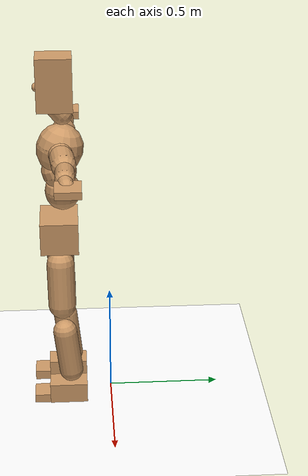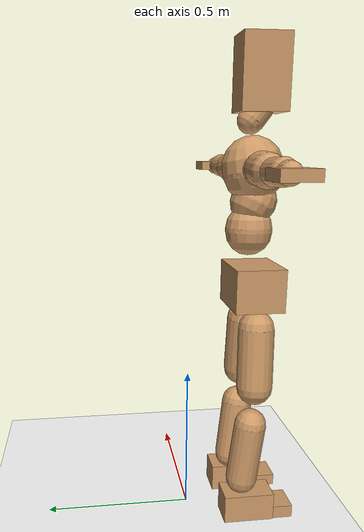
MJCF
<mujoco model="humanoid">
  <option integrator="implicitfast" />

  <visual>
    <global offwidth="1280" offheight="960" />
    <headlight active="1" ambient="0.34 0.34 0.34" diffuse="0.5 0.5 0.5" />
  </visual>

  <default>
    <joint damping="2" stiffness="2" armature="0.01" limited="true" solimplimit="0 .99 .01" />
    <geom condim="1" friction="0.7 0.005 0.0001" solimp=".99 .99 .003" solref="0.015 1" margin="0.001" rgba="0.8 0.6 .4 1" />
    <default class="smplcontact">
      <geom condim="3" friction="1. 0.005 0.0001" solref="0.015 1" solimp="0.98 0.98 0.001" priority="1" />
    </default>
    <default class="stiff_medium">
      <joint stiffness="10" />
    </default>
    <default class="stiff_medium_higher">
      <joint stiffness="50" />
    </default>
    <default class="stiff_high">
      <joint stiffness="100" />
    </default>
  </default>

  <asset>
    <texture type="skybox" builtin="gradient" rgb1="0.99 0.99 0.99" rgb2="0.608 0.828 0.892" width="100" />
    <texture builtin="flat" height="1278" mark="cross" markrgb="1 1 1" name="texgeom" random="0.01" rgb1="0.8 0.6 0.4" rgb2="0.8 0.6 0.4" type="cube" width="127" />
    <texture name="texplane" type="2d" builtin="checker" markrgb="1 1 1" rgb1="0.756 0.772 0.76" rgb2="0.6 0.6 0.6" width="100" height="100" />
    <material name="MatPlane" reflectance="0.5" texture="texplane" texrepeat="1 1" texuniform="true" />
    <material name="geom" texture="texgeom" texuniform="true" />
  </asset>

  <worldbody>
    <light name="tracking_light" pos="0 0 7" dir="0 0 -1" directional="true" cutoff="100" exponent="1" diffuse="1 1 1" specular="0.1 0.1 0.1" mode="trackcom" />
    <camera name="back" pos="0 3 2.4" xyaxes="-1 0 0 0 -1 2" mode="trackcom" />
    <camera name="side" pos="-3 0 2.4" xyaxes="0 -1 0 1 0 2" mode="trackcom" />
    <camera name="front_side" pos="-2.8 -2.8 0.8" xyaxes="0.5 -0.5 0 0.1 0.1 1" mode="trackcom" />
    <geom condim="3" name="floor" pos="0 0 0" rgba="1 1 1 1" size="100 100 .2" type="plane" material="MatPlane" />
    <body name="Pelvis" pos="-0.0018 -0.2233 0.825587" euler="90 0 0">
      <site name="Pelvis" size="0.01" />
      <freejoint name="Pelvis" />
      <geom type="box" pos="-0.0000 -0.0121 -0.0055" size="0.1069 0.0722 0.083" quat="1.0000 0.0000 0.0000 0.0000" density="3165.830099" name="Pelvis" />
      <body name="L_Hip" pos="0.0608125 -0.079975 -0.00595">
        <joint name="L_Hip_x" type="hinge" pos="0 0 0" axis="1 0 0" stiffness="8.018564387755102" range="-160.0 22.92" class="stiff_medium" damping="11.360360262787497" armature="0.007153277434128083"/>
        <joint name="L_Hip_y" type="hinge" pos="0 0 0" axis="0 1 0" stiffness="8.040343265306122" range="-70.0 70.0" class="stiff_medium" damping="8.207855033549667" armature="0.008378856726485997"/>
        <joint name="L_Hip_z" type="hinge" pos="0 0 0" axis="0 0 1" stiffness="8.038478673469386" range="-28.65 90.0" class="stiff_medium" damping="7.581991637464593" armature="0.0071514274685227155"/>
        <geom type="capsule" density="2040.816327" fromto="0.0060375 -0.065625 -0.0007875 0.023975 -0.262675 -0.00315" size="0.0615" name="L_Hip" />
        <body name="L_Knee" pos="0.0300125 -0.3283 -0.0039375">
          <joint name="L_Knee_x" type="hinge" pos="0 0 0" axis="1 0 0" range="-5.16 171.89" damping="6.187481263356624" armature="0.007345812746914755" stiffness="1.6286882448979592"/>
          <joint name="L_Knee_y" type="hinge" pos="0 0 0" axis="0 1 0" range="-4.58 6.88" damping="6.664577128501177" armature="0.00860057196827574" stiffness="1.6138675306122447"/>
          <joint name="L_Knee_z" type="hinge" pos="0 0 0" axis="0 0 1" range="-6.88 4.58" damping="6.195974658750661" armature="0.007336542514311983" stiffness="1.635226244897959"/>
          <geom type="capsule" density="1234.567901" fromto="-0.0023625 -0.06965 -0.0076125 -0.0095375 -0.2786 -0.030625" size="0.0541" name="L_Knee" />
          <body name="L_Ankle" pos="-0.0119 -0.34825 -0.0382375">
            <joint name="L_Ankle_x" type="hinge" pos="0 0 0" axis="1 0 0" range="-45.84 45.84" class="stiff_medium" damping="5.161808139893182" armature="0.008458478225834665" stiffness="8.750018673469388"/>
            <joint name="L_Ankle_y" type="hinge" pos="0 0 0" axis="0 1 0" range="-74.48 22.92" class="stiff_medium" damping="2.5896377165389355" armature="0.008515827848834853" stiffness="8.750011836734695"/>
            <joint name="L_Ankle_z" type="hinge" pos="0 0 0" axis="0 0 1" range="-4.58 4.58" class="stiff_medium" damping="5.292201995620791" armature="0.008891238718238945" stiffness="8.75"/>
            <geom type="box" pos="0.0203875 -0.0209125 0.021175" size="0.0483 0.0464 0.085" quat="1.0000 0.0000 0.0000 0.0000" density="449.071558" name="L_Ankle" class="smplcontact" />
            <body name="L_Toe" pos="0.0231 -0.048825 0.104388">
              <joint name="L_Toe_x" type="hinge" pos="0 0 0" axis="1 0 0" range="-91.67 22.92" armature="0.009108934582591051" damping="1.785532722720832" stiffness="1.75"/>
              <joint name="L_Toe_y" type="hinge" pos="0 0 0" axis="0 1 0" range="-4.58 4.58" armature="0.009372172477213336" damping="1.811148908020726" stiffness="1.75"/>
              <joint name="L_Toe_z" type="hinge" pos="0 0 0" axis="0 0 1" range="-4.58 4.58" armature="0.009904425331423617" damping="1.8618670376797226" stiffness="1.75"/>
              <geom type="box" pos="-0.002625 0.0048125 0.0217" size="0.0478 0.02 0.0496" quat="1.0000 0.0000 0.0000 0.0000" density="423.206892" name="L_Toe" class="smplcontact" />
            </body>
          </body>
        </body>
      </body>
      <body name="R_Hip" pos="-0.0592375 -0.0791875 -0.0037625">
        <joint name="R_Hip_x" type="hinge" pos="0 0 0" axis="1 0 0" stiffness="8.018564387755102" range="-160.0 22.92" class="stiff_medium" damping="11.360360262787497" armature="0.007153277434128083"/>
        <joint name="R_Hip_y" type="hinge" pos="0 0 0" axis="0 1 0" stiffness="8.040343265306122" range="-70.0 70.0" class="stiff_medium" damping="8.207855033549667" armature="0.008378856726485997"/>
        <joint name="R_Hip_z" type="hinge" pos="0 0 0" axis="0 0 1" stiffness="8.038478673469386" range="-90.0 28.65" class="stiff_medium" damping="7.581991637464593" armature="0.0071514274685227155"/>
        <geom type="capsule" density="2040.816327" fromto="-0.0067375 -0.0669375 -0.001575 -0.026775 -0.267838 -0.0062125" size="0.0606" name="R_Hip" />
        <body name="R_Knee" pos="-0.0335125 -0.334775 -0.0077875">
          <joint name="R_Knee_x" type="hinge" pos="0 0 0" axis="1 0 0" range="-5.16 171.89" damping="6.187481263356624" armature="0.007345812746914755" stiffness="1.6286882448979592"/>
          <joint name="R_Knee_y" type="hinge" pos="0 0 0" axis="0 1 0" range="-6.88 4.58" damping="6.664577128501177" armature="0.00860057196827574" stiffness="1.6138675306122447"/>
          <joint name="R_Knee_z" type="hinge" pos="0 0 0" axis="0 0 1" range="-4.58 6.88" damping="6.195974658750661" armature="0.007336542514311983" stiffness="1.635226244897959"/>
          <geom type="capsule" density="1234.567901" fromto="0.0028 -0.0697375 -0.0074375 0.011025 -0.278863 -0.029575" size="0.0541" name="R_Knee" />
          <body name="R_Ankle" pos="0.013825 -0.3486 -0.0370125">
            <joint name="R_Ankle_x" type="hinge" pos="0 0 0" axis="1 0 0" range="-45.84 45.84" class="stiff_medium" damping="5.161808139893182" armature="0.008458478225834665" stiffness="8.750018673469388"/>
            <joint name="R_Ankle_y" type="hinge" pos="0 0 0" axis="0 1 0" range="-22.92 74.48" class="stiff_medium" damping="2.5896377165389355" armature="0.008515827848834853" stiffness="8.750011836734695"/>
            <joint name="R_Ankle_z" type="hinge" pos="0 0 0" axis="0 0 1" range="-4.58 4.58" class="stiff_medium" damping="5.292201995620791" armature="0.008891238718238945" stiffness="8.75"/>
            <geom type="box" pos="-0.01855 -0.015225 0.0224" size="0.0483 0.0478 0.0865" quat="1.0000 0.0000 0.0000 0.0000" density="434.700981" name="R_Ankle" class="smplcontact" />
            <body name="R_Toe" pos="-0.022225 -0.0420875 0.107888">
              <joint name="R_Toe_x" type="hinge" pos="0 0 0" axis="1 0 0" range="-91.67 22.92" armature="0.009108934582591051" damping="1.785532722720832" stiffness="1.75"/>
              <joint name="R_Toe_y" type="hinge" pos="0 0 0" axis="0 1 0" range="-4.58 4.58" armature="0.009372172477213336" damping="1.811148908020726" stiffness="1.75"/>
              <joint name="R_Toe_z" type="hinge" pos="0 0 0" axis="0 0 1" range="-4.58 4.58" armature="0.009904425331423617" damping="1.8618670376797226" stiffness="1.75"/>
              <geom type="box" pos="0.003675 0.0039375 0.0198625" size="0.0479 0.0216 0.0493" quat="1.0000 0.0000 0.0000 0.0000" density="407.384095" name="R_Toe" class="smplcontact" />
            </body>
          </body>
        </body>
      </body>
      <body name="Torso" pos="-0.0025 0.109 -0.0267">
        <joint name="Torso_x" type="hinge" pos="0 0 0" axis="1 0 0" range="-25.78 57.3" class="stiff_medium" damping="12.833128643120636" armature="0.008389867755726697" stiffness="8.724237142857143"/>
        <joint name="Torso_y" type="hinge" pos="0 0 0" axis="0 1 0" range="-57.3 57.3" class="stiff_high" damping="9.641007877053582" armature="0.0026152511802961754" stiffness="88.85287346938776"/>
        <joint name="Torso_z" type="hinge" pos="0 0 0" axis="0 0 1" range="-34.38 34.38" class="stiff_high" damping="15.256621848072804" armature="0.006404603814601956" stiffness="90.85827826086955"/>
        <geom type="capsule" density="2040.816327" fromto="0.0025 0.0608 0.0005 0.003 0.0743 0.0006" size="0.0769" name="Torso" />
        <body name="Spine" pos="0.0055 0.1352 0.0011">
          <joint name="Spine_x" type="hinge" pos="0 0 0" axis="1 0 0" stiffness="8.524132708333333" range="-25.78 57.3" class="stiff_medium" damping="12.593328186154578" armature="0.008268911088118521"/>
          <joint name="Spine_y" type="hinge" pos="0 0 0" axis="0 1 0" stiffness="8.372724772727274" range="-57.3 57.3" class="stiff_high" damping="3.7058359647278705" armature="0.002562864197858745"/>
          <joint name="Spine_z" type="hinge" pos="0 0 0" axis="0 0 1" stiffness="17.091765581395343" range="-34.38 34.38" class="stiff_high" damping="7.91233078272408" armature="0.005087324565503502"/>
          <geom type="capsule" density="2040.816327" fromto="0.0007 0.0238 0.0114 0.0008 0.0291 0.014" size="0.0755" name="Spine" />
          <body name="Chest" pos="0.0015 0.0529 0.0254">
            <joint name="Chest_x" type="hinge" pos="0 0 0" axis="1 0 0" stiffness="8.200278372093024" range="-25.78 57.3" class="stiff_medium" damping="12.319816615498866" armature="0.008226164178146736"/>
            <joint name="Chest_y" type="hinge" pos="0 0 0" axis="0 1 0" stiffness="6.66116392857143" range="-57.3 57.3" class="stiff_high" damping="3.2862373670032503" armature="0.0025331899922285133"/>
            <joint name="Chest_z" type="hinge" pos="0 0 0" axis="0 0 1" stiffness="16.64932651162791" range="-34.38 34.38" class="stiff_high" damping="7.360514262532794" armature="0.004519466278837104"/>
            <geom type="capsule" density="2040.816327" fromto="-0.0009 0.0682 -0.0173 -0.001 0.0833 -0.0212" size="0.1002" name="Chest" />
            <body name="Neck" pos="-0.0028 0.2139 -0.0429">
              <joint name="Neck_x" type="hinge" pos="0 0 0" axis="1 0 0" range="-28.65 57.3" class="stiff_medium_higher" damping="10.000000000000007" armature="0.010000000000000016" stiffness="50.0"/>
              <joint name="Neck_y" type="hinge" pos="0 0 0" axis="0 1 0" range="-40.11 40.11" class="stiff_medium_higher" damping="10.0" armature="0.01" stiffness="50.0"/>
              <joint name="Neck_z" type="hinge" pos="0 0 0" axis="0 0 1" range="-40.11 40.11" class="stiff_medium_higher" damping="9.999999999999995" armature="0.00999999999999999" stiffness="50.0"/>
              <geom type="capsule" density="1000" fromto="0.001 0.013 0.0103 0.0041 0.052 0.0411" size="0.0436" name="Neck" />
              <body name="Head" pos="0.0052 0.065 0.0513">
                <joint name="Head_x" type="hinge" pos="0 0 0" axis="1 0 0" range="-28.65 57.3" class="stiff_medium_higher" damping="2.0000000000000004" armature="0.010000000000000005" stiffness="50.0"/>
                <joint name="Head_y" type="hinge" pos="0 0 0" axis="0 1 0" range="-40.11 40.11" class="stiff_medium_higher" damping="1.9999999999999998" armature="0.009999999999999998" stiffness="50.0"/>
                <joint name="Head_z" type="hinge" pos="0 0 0" axis="0 0 1" range="-40.11 40.11" class="stiff_medium_higher" damping="1.9999999999999976" armature="0.009999999999999976" stiffness="50.0"/>
                <geom type="box" pos="-0.0042 0.0876 -0.0116" size="0.0606 0.1154 0.076" quat="1.0000 0.0000 0.0000 0.0000" density="1018.069894" name="Head" />
                <geom type="capsule" name="nose" size="0.02 0.01" pos="0 0.07 0.05" quat="1 0 0 0" mass="0" contype="0" conaffinity="0" />
              </body>
            </body>
            <body name="L_Thorax" pos="0.04334 0.066935 -0.018755">
              <joint name="L_Thorax_x" type="hinge" pos="0 0 0" axis="1 0 0" range="-10.89 4.58" class="stiff_medium_higher" damping="8.434703621562896" armature="0.004456108006307235" stiffness="19.956940306122444"/>
              <joint name="L_Thorax_y" type="hinge" pos="0 0 0" axis="0 1 0" range="-28.65 17.19" class="stiff_medium_higher" damping="6.022763730189366" armature="0.0023084620474975964" stiffness="19.641693367346935"/>
              <joint name="L_Thorax_z" type="hinge" pos="0 0 0" axis="0 0 1" range="-31.51 40.11" class="stiff_medium_higher" damping="6.020659652326868" armature="0.0023064402545495116" stiffness="19.64517755102041"/>
              <geom type="capsule" density="1000" fromto="0.01001 0.003355 -0.00099 0.04004 0.01342 -0.003905" size="0.0521" name="L_Thorax" />
              <body name="L_Shoulder" pos="0.05005 0.016775 -0.004895">
                <joint name="L_Shoulder_x" type="hinge" pos="0 0 0" axis="1 0 0" range="-97.4 97.4" class="stiff_medium" damping="2.7507326192703734" armature="0.0052075802541256865" stiffness="4.036066215805471"/>
                <joint name="L_Shoulder_y" type="hinge" pos="0 0 0" axis="0 1 0" range="-108.86 80.21" class="stiff_medium" damping="1.8298767221096353" armature="0.00235368225666454" stiffness="3.9517852040816326"/>
                <joint name="L_Shoulder_z" type="hinge" pos="0 0 0" axis="0 0 1" range="-97.4 85.94" class="stiff_medium" damping="1.8299095357342472" armature="0.002350748922258392" stiffness="3.9568582653061224"/>
                <geom type="capsule" density="1000" fromto="0.028545 -0.00143 -0.003025 0.114235 -0.00561 -0.0121" size="0.0517" name="L_Shoulder" />
                <body name="L_Elbow" pos="0.14278 -0.00704 -0.015125">
                  <joint name="L_Elbow_x" type="hinge" pos="0 0 0" axis="1 0 0" range="-17.19 4.58" damping="2.6383809861162484" armature="0.006602890217627034" stiffness="0.8433948163265306"/>
                  <joint name="L_Elbow_y" type="hinge" pos="0 0 0" axis="0 1 0" range="-180.0 17.19" damping="1.6493311800762023" armature="0.0025828362461048147" stiffness="0.842575551020408"/>
                  <joint name="L_Elbow_z" type="hinge" pos="0 0 0" axis="0 0 1" range="-100.84 4.58" damping="1.645769253714411" armature="0.002567445381083713" stiffness="0.8439693265306122"/>
                  <geom type="capsule" density="1000" fromto="0.02739 0.00099 -0.00011 0.10967 0.00396 -0.000495" size="0.0405" name="L_Elbow" />
                  <body name="L_Wrist" pos="0.13706 0.00495 -0.00066">
                    <joint name="L_Wrist_x" type="hinge" pos="0 0 0" axis="1 0 0" range="-180.0 22.92" armature="0.007461834395238961" damping="1.2279494204587553" stiffness="1.0103814285714288"/>
                    <joint name="L_Wrist_y" type="hinge" pos="0 0 0" axis="0 1 0" range="-17.19 17.19" armature="0.003664915616612696" damping="0.854957534676404" stiffness="0.9972294897959184"/>
                    <joint name="L_Wrist_z" type="hinge" pos="0 0 0" axis="0 0 1" range="-22.92 22.92" armature="0.003441422269276113" damping="0.8306797080467383" stiffness="1.002534306122449"/>
                    <geom type="capsule" density="1000" fromto="0.00924 -0.00088 -0.00165 0.03696 -0.003575 -0.0066" size="0.0318" name="L_Wrist" class="smplcontact" />
                    <body name="L_Hand" pos="0.0462 -0.00451 -0.008195">
                      <joint name="L_Hand_x" type="hinge" pos="0 0 0" axis="1 0 0" range="-17.19 17.19" armature="0.009696126030369035" damping="1.4605299472045026" stiffness="1.0999999999999999"/>
                      <joint name="L_Hand_y" type="hinge" pos="0 0 0" axis="0 1 0" range="-51.57 51.57" armature="0.006325063576496692" damping="1.1796245109479846" stiffness="1.0999999999999999"/>
                      <joint name="L_Hand_z" type="hinge" pos="0 0 0" axis="0 0 1" range="-91.67 91.67" armature="0.005426460820316552" damping="1.0926213344382587" stiffness="1.0999999999999999"/>
                      <geom type="box" pos="0.027115 0.00055 -0.00319" size="0.0585 0.0158 0.0538" quat="1.0000 0.0000 0.0000 0.0000" density="400.552564" name="L_Hand" class="smplcontact" />
                    </body>
                  </body>
                </body>
              </body>
            </body>
            <body name="R_Thorax" pos="-0.04499 0.06534 -0.02123">
              <joint name="R_Thorax_x" type="hinge" pos="0 0 0" axis="1 0 0" range="-10.89 4.58" class="stiff_medium_higher" damping="8.434703621562896" armature="0.004456108006307235" stiffness="19.956940306122444"/>
              <joint name="R_Thorax_y" type="hinge" pos="0 0 0" axis="0 1 0" range="-17.19 28.65" class="stiff_medium_higher" damping="6.022763730189366" armature="0.0023084620474975964" stiffness="19.641693367346935"/>
              <joint name="R_Thorax_z" type="hinge" pos="0 0 0" axis="0 0 1" range="-40.11 31.51" class="stiff_medium_higher" damping="6.020659652326868" armature="0.0023064402545495116" stiffness="19.64517755102041"/>
              <geom type="capsule" density="1000" fromto="-0.01056 0.003575 -0.00099 -0.04224 0.0143 -0.004015" size="0.0511" name="R_Thorax" />
              <body name="R_Shoulder" pos="-0.0528 0.01793 -0.005005">
                <joint name="R_Shoulder_x" type="hinge" pos="0 0 0" axis="1 0 0" range="-97.4 97.4" class="stiff_medium" damping="2.7507326192703734" armature="0.0052075802541256865" stiffness="4.036066215805471"/>
                <joint name="R_Shoulder_y" type="hinge" pos="0 0 0" axis="0 1 0" range="-80.21 108.86" class="stiff_medium" damping="1.8298767221096353" armature="0.00235368225666454" stiffness="3.9517852040816326"/>
                <joint name="R_Shoulder_z" type="hinge" pos="0 0 0" axis="0 0 1" range="-85.94 97.4" class="stiff_medium" damping="1.8299095357342472" armature="0.002350748922258392" stiffness="3.9568582653061224"/>
                <geom type="capsule" density="1000" fromto="-0.027885 -0.001485 -0.002365 -0.11165 -0.005885 -0.009405" size="0.0531" name="R_Shoulder" />
                <body name="R_Elbow" pos="-0.139535 -0.007315 -0.01177">
                  <joint name="R_Elbow_x" type="hinge" pos="0 0 0" axis="1 0 0" range="-17.19 4.58" damping="2.6383809861162484" armature="0.006602890217627034" stiffness="0.8433948163265306"/>
                  <joint name="R_Elbow_y" type="hinge" pos="0 0 0" axis="0 1 0" range="-17.19 180.0" damping="1.6493311800762023" armature="0.0025828362461048147" stiffness="0.842575551020408"/>
                  <joint name="R_Elbow_z" type="hinge" pos="0 0 0" axis="0 0 1" range="-4.58 100.84" damping="1.645769253714411" armature="0.002567445381083713" stiffness="0.8439693265306122"/>
                  <geom type="capsule" density="1000" fromto="-0.028105 0.00088 -0.000605 -0.11231 0.00341 -0.00242" size="0.0408" name="R_Elbow" />
                  <body name="R_Wrist" pos="-0.140415 0.00429 -0.00308">
                    <joint name="R_Wrist_x" type="hinge" pos="0 0 0" axis="1 0 0" range="-180.0 22.92" armature="0.007461834395238961" damping="1.2279494204587553" stiffness="1.0103814285714288"/>
                    <joint name="R_Wrist_y" type="hinge" pos="0 0 0" axis="0 1 0" range="-17.19 17.19" armature="0.003664915616612696" damping="0.854957534676404" stiffness="0.9972294897959184"/>
                    <joint name="R_Wrist_z" type="hinge" pos="0 0 0" axis="0 0 1" range="-22.92 22.92" armature="0.003441422269276113" damping="0.8306797080467383" stiffness="1.002534306122449"/>
                    <geom type="capsule" density="1000" fromto="-0.009295 -0.00066 -0.001155 -0.037235 -0.002695 -0.004565" size="0.0326" name="R_Wrist" class="smplcontact" />
                    <body name="R_Hand" pos="-0.04653 -0.003355 -0.005665">
                      <joint name="R_Hand_x" type="hinge" pos="0 0 0" axis="1 0 0" range="-17.19 17.19" armature="0.009696126030369035" damping="1.4605299472045026" stiffness="1.0999999999999999"/>
                      <joint name="R_Hand_y" type="hinge" pos="0 0 0" axis="0 1 0" range="-51.57 51.57" armature="0.006325063576496692" damping="1.1796245109479846" stiffness="1.0999999999999999"/>
                      <joint name="R_Hand_z" type="hinge" pos="0 0 0" axis="0 0 1" range="-91.67 91.67" armature="0.005426460820316552" damping="1.0926213344382587" stiffness="1.0999999999999999"/>
                      <geom type="box" pos="-0.02541 -0.000495 -0.004345" size="0.0569 0.0164 0.0546" quat="1.0000 0.0000 0.0000 0.0000" density="403.679611" name="R_Hand" class="smplcontact" />
                    </body>
                  </body>
                </body>
              </body>
            </body>
          </body>
        </body>
      </body>
    </body>
  </worldbody>
  <actuator>
    <general name="L_Hip_x" joint="L_Hip_x" biastype="affine" gainprm="230.3974619502181" biasprm="-172.65954561631258 -144.33415897959185 -1.5147147017049996" ctrllimited="true" ctrlrange="-1 1" forcerange="-288.6683179591837 288.6683179591837" />
    <general name="L_Hip_y" joint="L_Hip_y" biastype="affine" gainprm="176.8163833423812" biasprm="0.0 -144.7261787755102 -1.6415710067099332" ctrllimited="true" ctrlrange="-1 1" forcerange="-289.4523575510204 289.4523575510204" />
    <general name="L_Hip_z" joint="L_Hip_z" biastype="affine" gainprm="149.81713355526176" biasprm="77.4654963642251 -144.69261612244895 -1.5163983274929185" ctrllimited="true" ctrlrange="-1 1" forcerange="-289.3852322448979 289.3852322448979" />
    <general name="L_Knee_x" joint="L_Knee_x" biastype="affine" gainprm="226.4768283011216" biasprm="213.27580673621011 -146.58194204081633 -1.546870315839156" ctrllimited="true" ctrlrange="-1 1" forcerange="-293.16388408163266 293.16388408163266" />
    <general name="L_Knee_y" joint="L_Knee_y" biastype="affine" gainprm="14.525877693080384" biasprm="2.915315767372154 -145.24807775510203 -1.6661442821252943" ctrllimited="true" ctrlrange="-1 1" forcerange="-290.49615551020406 290.49615551020406" />
    <general name="L_Knee_z" joint="L_Knee_z" biastype="affine" gainprm="14.718120281465588" biasprm="-2.953898485808975 -147.17036204081631 -1.5489936646876652" ctrllimited="true" ctrlrange="-1 1" forcerange="-294.34072408163263 294.34072408163263" />
    <general name="L_Ankle_x" joint="L_Ankle_x" biastype="affine" gainprm="63.0047751266266" biasprm="0.0 -78.75016806122449 -1.7206027132977273" ctrllimited="true" ctrlrange="-1 1" forcerange="-157.50033612244897 157.50033612244897" />
    <general name="L_Ankle_y" joint="L_Ankle_y" biastype="affine" gainprm="66.93564902394152" biasprm="-35.43328607468609 -78.75010653061226 -1.7264251443592904" ctrllimited="true" ctrlrange="-1 1" forcerange="-157.5002130612245 157.5002130612245" />
    <general name="L_Ankle_z" joint="L_Ankle_z" biastype="affine" gainprm="6.294966279630548" biasprm="0.0 -78.75 -1.7640673318735969" ctrllimited="true" ctrlrange="-1 1" forcerange="-157.5 157.5" />
    <general name="L_Toe_x" joint="L_Toe_x" biastype="affine" gainprm="62.999142880599514" biasprm="-37.797286613502195 -63.0 -0.7142130890883328" ctrllimited="true" ctrlrange="-1 1" forcerange="-126.0 126.0" />
    <general name="L_Toe_y" joint="L_Toe_y" biastype="affine" gainprm="5.035973023704439" biasprm="0.0 -63.0 -0.7244595632082904" ctrllimited="true" ctrlrange="-1 1" forcerange="-126.0 126.0" />
    <general name="L_Toe_z" joint="L_Toe_z" biastype="affine" gainprm="5.035973023704439" biasprm="0.0 -63.0 -0.7447468150718891" ctrllimited="true" ctrlrange="-1 1" forcerange="-126.0 126.0" />
    <general name="R_Hip_x" joint="R_Hip_x" biastype="affine" gainprm="230.3974619502181" biasprm="-172.65954561631258 -144.33415897959185 -1.5147147017049996" ctrllimited="true" ctrlrange="-1 1" forcerange="-288.6683179591837 288.6683179591837" />
    <general name="R_Hip_y" joint="R_Hip_y" biastype="affine" gainprm="176.8163833423812" biasprm="0.0 -144.7261787755102 -1.6415710067099332" ctrllimited="true" ctrlrange="-1 1" forcerange="-289.4523575510204 289.4523575510204" />
    <general name="R_Hip_z" joint="R_Hip_z" biastype="affine" gainprm="149.81713355526176" biasprm="-77.4654963642251 -144.69261612244895 -1.5163983274929185" ctrllimited="true" ctrlrange="-1 1" forcerange="-289.3852322448979 289.3852322448979" />
    <general name="R_Knee_x" joint="R_Knee_x" biastype="affine" gainprm="226.4768283011216" biasprm="213.27580673621011 -146.58194204081633 -1.546870315839156" ctrllimited="true" ctrlrange="-1 1" forcerange="-293.16388408163266 293.16388408163266" />
    <general name="R_Knee_y" joint="R_Knee_y" biastype="affine" gainprm="14.525877693080384" biasprm="-2.915315767372154 -145.24807775510203 -1.6661442821252943" ctrllimited="true" ctrlrange="-1 1" forcerange="-290.49615551020406 290.49615551020406" />
    <general name="R_Knee_z" joint="R_Knee_z" biastype="affine" gainprm="14.718120281465588" biasprm="2.953898485808975 -147.17036204081631 -1.5489936646876652" ctrllimited="true" ctrlrange="-1 1" forcerange="-294.34072408163263 294.34072408163263" />
    <general name="R_Ankle_x" joint="R_Ankle_x" biastype="affine" gainprm="63.0047751266266" biasprm="0.0 -78.75016806122449 -1.7206027132977273" ctrllimited="true" ctrlrange="-1 1" forcerange="-157.50033612244897 157.50033612244897" />
    <general name="R_Ankle_y" joint="R_Ankle_y" biastype="affine" gainprm="66.93564902394152" biasprm="35.43328607468609 -78.75010653061226 -1.7264251443592904" ctrllimited="true" ctrlrange="-1 1" forcerange="-157.5002130612245 157.5002130612245" />
    <general name="R_Ankle_z" joint="R_Ankle_z" biastype="affine" gainprm="6.294966279630548" biasprm="0.0 -78.75 -1.7640673318735969" ctrllimited="true" ctrlrange="-1 1" forcerange="-157.5 157.5" />
    <general name="R_Toe_x" joint="R_Toe_x" biastype="affine" gainprm="62.999142880599514" biasprm="-37.797286613502195 -63.0 -0.7142130890883328" ctrllimited="true" ctrlrange="-1 1" forcerange="-126.0 126.0" />
    <general name="R_Toe_y" joint="R_Toe_y" biastype="affine" gainprm="5.035973023704439" biasprm="0.0 -63.0 -0.7244595632082904" ctrllimited="true" ctrlrange="-1 1" forcerange="-126.0 126.0" />
    <general name="R_Toe_z" joint="R_Toe_z" biastype="affine" gainprm="5.035973023704439" biasprm="0.0 -63.0 -0.7447468150718891" ctrllimited="true" ctrlrange="-1 1" forcerange="-126.0 126.0" />
    <general name="Torso_x" joint="Torso_x" biastype="affine" gainprm="151.80377221252243" biasprm="57.593342563056154 -209.38169142857143 -3.422167638165503" ctrllimited="true" ctrlrange="-1 1" forcerange="-314.07253714285713 314.07253714285713" />
    <general name="Torso_y" joint="Torso_y" biastype="affine" gainprm="213.26260438991383" biasprm="0.0 -213.24689632653062 -1.9282015754107165" ctrllimited="true" ctrlrange="-1 1" forcerange="-319.8703444897959 319.8703444897959" />
    <general name="Torso_z" joint="Torso_z" biastype="affine" gainprm="130.84555825179245" biasprm="0.0 -218.05986782608693 -3.051324369614561" ctrllimited="true" ctrlrange="-1 1" forcerange="-327.0898017391304 327.0898017391304" />
    <general name="Spine_x" joint="Spine_x" biastype="affine" gainprm="148.32190812518058" biasprm="56.272346462514335 -204.579185 -3.3582208496412207" ctrllimited="true" ctrlrange="-1 1" forcerange="-306.86877749999996 306.86877749999996" />
    <general name="Spine_y" joint="Spine_y" biastype="affine" gainprm="200.96019646308363" biasprm="0.0 -200.94539454545458 -1.8529179823639352" ctrllimited="true" ctrlrange="-1 1" forcerange="-301.41809181818184 301.41809181818184" />
    <general name="Spine_z" joint="Spine_z" biastype="affine" gainprm="123.06977700949903" biasprm="0.0 -205.10118697674412 -2.63744359424136" ctrllimited="true" ctrlrange="-1 1" forcerange="-307.6517804651162 307.6517804651162" />
    <general name="Chest_x" joint="Chest_x" biastype="affine" gainprm="142.68676672729774" biasprm="54.13441125715483 -196.80668093023257 -3.2852844307996976" ctrllimited="true" ctrlrange="-1 1" forcerange="-295.21002139534886 295.21002139534886" />
    <general name="Chest_y" joint="Chest_y" biastype="affine" gainprm="159.87971038041" biasprm="0.0 -159.8679342857143 -1.6431186835016252" ctrllimited="true" ctrlrange="-1 1" forcerange="-239.80190142857145 239.80190142857145" />
    <general name="Chest_z" joint="Chest_z" biastype="affine" gainprm="119.88398105429127" biasprm="0.0 -199.7919181395349 -2.453504754177598" ctrllimited="true" ctrlrange="-1 1" forcerange="-299.68787720930237 299.68787720930237" />
    <general name="Neck_x" joint="Neck_x" biastype="affine" gainprm="27.00198885760427" biasprm="9.000662952534757 -36.0 -0.8000000000000006" ctrllimited="true" ctrlrange="-1 1" forcerange="-72.0 72.0" />
    <general name="Neck_y" joint="Neck_y" biastype="affine" gainprm="25.20185626709732" biasprm="0.0 -36.0 -0.8" ctrllimited="true" ctrlrange="-1 1" forcerange="-72.0 72.0" />
    <general name="Neck_z" joint="Neck_z" biastype="affine" gainprm="25.20185626709732" biasprm="0.0 -36.0 -0.7999999999999996" ctrllimited="true" ctrlrange="-1 1" forcerange="-72.0 72.0" />
    <general name="Head_x" joint="Head_x" biastype="affine" gainprm="18.001325905069514" biasprm="6.000441968356505 -24.0 -0.8000000000000003" ctrllimited="true" ctrlrange="-1 1" forcerange="-48.0 48.0" />
    <general name="Head_y" joint="Head_y" biastype="affine" gainprm="16.801237511398213" biasprm="0.0 -24.0 -0.7999999999999999" ctrllimited="true" ctrlrange="-1 1" forcerange="-48.0 48.0" />
    <general name="Head_z" joint="Head_z" biastype="affine" gainprm="16.801237511398213" biasprm="0.0 -24.0 -0.799999999999999" ctrllimited="true" ctrlrange="-1 1" forcerange="-48.0 48.0" />
    <general name="L_Thorax_x" joint="L_Thorax_x" biastype="affine" gainprm="6.466106980153143" biasprm="-2.6374360080650514 -47.89665673469387 -0.6747762897250317" ctrllimited="true" ctrlrange="-1 1" forcerange="-95.79331346938774 95.79331346938774" />
    <general name="L_Thorax_y" joint="L_Thorax_y" biastype="affine" gainprm="18.857414593762904" biasprm="-4.714353648440726 -47.140064081632644 -0.48182109841514936" ctrllimited="true" ctrlrange="-1 1" forcerange="-94.28012816326529 94.28012816326529" />
    <general name="L_Thorax_z" joint="L_Thorax_z" biastype="affine" gainprm="29.46787972505706" biasprm="3.538449673771163 -47.14842612244898 -0.4816527721861495" ctrllimited="true" ctrlrange="-1 1" forcerange="-94.29685224489796 94.29685224489796" />
    <general name="L_Shoulder_x" joint="L_Shoulder_x" biastype="affine" gainprm="32.93334506047744" biasprm="0.0 -19.373117835866264 -0.7335286984720996" ctrllimited="true" ctrlrange="-1 1" forcerange="-38.74623567173253 38.74623567173253" />
    <general name="L_Shoulder_y" joint="L_Shoulder_y" biastype="affine" gainprm="31.297133640991394" biasprm="-4.74249155770034 -18.968568979591836 -0.4879671258959028" ctrllimited="true" ctrlrange="-1 1" forcerange="-37.93713795918367 37.93713795918367" />
    <general name="L_Shoulder_z" joint="L_Shoulder_z" biastype="affine" gainprm="30.387595059587213" biasprm="-1.8994318718384982 -18.992919673469387 -0.4879758761957993" ctrllimited="true" ctrlrange="-1 1" forcerange="-37.985839346938775 37.985839346938775" />
    <general name="L_Elbow_x" joint="L_Elbow_x" biastype="affine" gainprm="5.768185641845626" biasprm="-3.3411493313584466 -30.3622133877551 -0.4221409577785997" ctrllimited="true" ctrlrange="-1 1" forcerange="-60.7244267755102 60.7244267755102" />
    <general name="L_Elbow_y" joint="L_Elbow_y" biastype="affine" gainprm="52.19676802931011" biasprm="-43.09628177317298 -30.33271983673469 -0.26389298881219236" ctrllimited="true" ctrlrange="-1 1" forcerange="-60.66543967346938 60.66543967346938" />
    <general name="L_Elbow_z" joint="L_Elbow_z" biastype="affine" gainprm="27.951141407994328" biasprm="-25.522451830141666 -30.382895755102037 -0.2633230805943058" ctrllimited="true" ctrlrange="-1 1" forcerange="-60.765791510204075 60.765791510204075" />
    <general name="L_Wrist_x" joint="L_Wrist_x" biastype="affine" gainprm="10.735167645580283" biasprm="-8.310073594361082 -6.062288571428573 -0.4911797681835022" ctrllimited="true" ctrlrange="-1 1" forcerange="-12.124577142857145 12.124577142857145" />
    <general name="L_Wrist_y" joint="L_Wrist_y" biastype="affine" gainprm="1.7951453047962525" biasprm="0.0 -5.9833769387755105 -0.3419830138705616" ctrllimited="true" ctrlrange="-1 1" forcerange="-11.966753877551021 11.966753877551021" />
    <general name="L_Wrist_z" joint="L_Wrist_z" biastype="affine" gainprm="2.4062595700697247" biasprm="0.0 -6.015205836734694 -0.33227188321869533" ctrllimited="true" ctrlrange="-1 1" forcerange="-12.030411673469388 12.030411673469388" />
    <general name="L_Hand_x" joint="L_Hand_x" biastype="affine" gainprm="1.9801458495576467" biasprm="0.0 -6.6 -0.5842119788818011" ctrllimited="true" ctrlrange="-1 1" forcerange="-13.2 13.2" />
    <general name="L_Hand_y" joint="L_Hand_y" biastype="affine" gainprm="5.940437548672939" biasprm="0.0 -6.6 -0.4718498043791939" ctrllimited="true" ctrlrange="-1 1" forcerange="-13.2 13.2" />
    <general name="L_Hand_z" joint="L_Hand_z" biastype="affine" gainprm="10.55962594700113" biasprm="0.0 -6.6 -0.4370485337753035" ctrllimited="true" ctrlrange="-1 1" forcerange="-13.2 13.2" />
    <general name="R_Thorax_x" joint="R_Thorax_x" biastype="affine" gainprm="6.466106980153143" biasprm="-2.6374360080650514 -47.89665673469387 -0.6747762897250317" ctrllimited="true" ctrlrange="-1 1" forcerange="-95.79331346938774 95.79331346938774" />
    <general name="R_Thorax_y" joint="R_Thorax_y" biastype="affine" gainprm="18.857414593762904" biasprm="4.714353648440723 -47.140064081632644 -0.48182109841514936" ctrllimited="true" ctrlrange="-1 1" forcerange="-94.28012816326529 94.28012816326529" />
    <general name="R_Thorax_z" joint="R_Thorax_z" biastype="affine" gainprm="29.46787972505706" biasprm="-3.538449673771163 -47.14842612244898 -0.4816527721861495" ctrllimited="true" ctrlrange="-1 1" forcerange="-94.29685224489796 94.29685224489796" />
    <general name="R_Shoulder_x" joint="R_Shoulder_x" biastype="affine" gainprm="32.93334506047744" biasprm="0.0 -19.373117835866264 -0.7335286984720996" ctrllimited="true" ctrlrange="-1 1" forcerange="-38.74623567173253 38.74623567173253" />
    <general name="R_Shoulder_y" joint="R_Shoulder_y" biastype="affine" gainprm="31.297133640991394" biasprm="4.74249155770034 -18.968568979591836 -0.4879671258959028" ctrllimited="true" ctrlrange="-1 1" forcerange="-37.93713795918367 37.93713795918367" />
    <general name="R_Shoulder_z" joint="R_Shoulder_z" biastype="affine" gainprm="30.387595059587213" biasprm="1.899431871838494 -18.992919673469387 -0.4879758761957993" ctrllimited="true" ctrlrange="-1 1" forcerange="-37.985839346938775 37.985839346938775" />
    <general name="R_Elbow_x" joint="R_Elbow_x" biastype="affine" gainprm="5.768185641845626" biasprm="-3.3411493313584466 -30.3622133877551 -0.4221409577785997" ctrllimited="true" ctrlrange="-1 1" forcerange="-60.7244267755102 60.7244267755102" />
    <general name="R_Elbow_y" joint="R_Elbow_y" biastype="affine" gainprm="52.19676802931011" biasprm="43.09628177317298 -30.33271983673469 -0.26389298881219236" ctrllimited="true" ctrlrange="-1 1" forcerange="-60.66543967346938 60.66543967346938" />
    <general name="R_Elbow_z" joint="R_Elbow_z" biastype="affine" gainprm="27.951141407994328" biasprm="25.522451830141662 -30.382895755102037 -0.2633230805943058" ctrllimited="true" ctrlrange="-1 1" forcerange="-60.765791510204075 60.765791510204075" />
    <general name="R_Wrist_x" joint="R_Wrist_x" biastype="affine" gainprm="10.735167645580283" biasprm="-8.310073594361082 -6.062288571428573 -0.4911797681835022" ctrllimited="true" ctrlrange="-1 1" forcerange="-12.124577142857145 12.124577142857145" />
    <general name="R_Wrist_y" joint="R_Wrist_y" biastype="affine" gainprm="1.7951453047962525" biasprm="0.0 -5.9833769387755105 -0.3419830138705616" ctrllimited="true" ctrlrange="-1 1" forcerange="-11.966753877551021 11.966753877551021" />
    <general name="R_Wrist_z" joint="R_Wrist_z" biastype="affine" gainprm="2.4062595700697247" biasprm="0.0 -6.015205836734694 -0.33227188321869533" ctrllimited="true" ctrlrange="-1 1" forcerange="-12.030411673469388 12.030411673469388" />
    <general name="R_Hand_x" joint="R_Hand_x" biastype="affine" gainprm="1.9801458495576467" biasprm="0.0 -6.6 -0.5842119788818011" ctrllimited="true" ctrlrange="-1 1" forcerange="-13.2 13.2" />
    <general name="R_Hand_y" joint="R_Hand_y" biastype="affine" gainprm="5.940437548672939" biasprm="0.0 -6.6 -0.4718498043791939" ctrllimited="true" ctrlrange="-1 1" forcerange="-13.2 13.2" />
    <general name="R_Hand_z" joint="R_Hand_z" biastype="affine" gainprm="10.55962594700113" biasprm="0.0 -6.6 -0.4370485337753035" ctrllimited="true" ctrlrange="-1 1" forcerange="-13.2 13.2" />
  </actuator>
  <contact>
    <exclude body1="Torso" body2="Chest" />
    <exclude body1="Head" body2="Chest" />
    <exclude body1="R_Knee" body2="R_Toe" />
    <exclude body1="R_Knee" body2="L_Ankle" />
    <exclude body1="R_Knee" body2="L_Toe" />
    <exclude body1="L_Knee" body2="L_Toe" />
    <exclude body1="L_Knee" body2="R_Ankle" />
    <exclude body1="L_Knee" body2="R_Toe" />
    <exclude body1="L_Shoulder" body2="Chest" />
    <exclude body1="R_Shoulder" body2="Chest" />
  </contact>
  <sensor>
    <framelinvel name="sensor_Pelvis_framelinvel" objtype="xbody" objname="Pelvis" />
    <framelinvel name="sensor_L_Hip_framelinvel" objtype="xbody" objname="L_Hip" />
    <framelinvel name="sensor_L_Knee_framelinvel" objtype="xbody" objname="L_Knee" />
    <framelinvel name="sensor_L_Ankle_framelinvel" objtype="xbody" objname="L_Ankle" />
    <framelinvel name="sensor_L_Toe_framelinvel" objtype="xbody" objname="L_Toe" />
    <framelinvel name="sensor_R_Hip_framelinvel" objtype="xbody" objname="R_Hip" />
    <framelinvel name="sensor_R_Knee_framelinvel" objtype="xbody" objname="R_Knee" />
    <framelinvel name="sensor_R_Ankle_framelinvel" objtype="xbody" objname="R_Ankle" />
    <framelinvel name="sensor_R_Toe_framelinvel" objtype="xbody" objname="R_Toe" />
    <framelinvel name="sensor_Torso_framelinvel" objtype="xbody" objname="Torso" />
    <framelinvel name="sensor_Spine_framelinvel" objtype="xbody" objname="Spine" />
    <framelinvel name="sensor_Chest_framelinvel" objtype="xbody" objname="Chest" />
    <framelinvel name="sensor_Neck_framelinvel" objtype="xbody" objname="Neck" />
    <framelinvel name="sensor_Head_framelinvel" objtype="xbody" objname="Head" />
    <framelinvel name="sensor_L_Thorax_framelinvel" objtype="xbody" objname="L_Thorax" />
    <framelinvel name="sensor_L_Shoulder_framelinvel" objtype="xbody" objname="L_Shoulder" />
    <framelinvel name="sensor_L_Elbow_framelinvel" objtype="xbody" objname="L_Elbow" />
    <framelinvel name="sensor_L_Wrist_framelinvel" objtype="xbody" objname="L_Wrist" />
    <framelinvel name="sensor_L_Hand_framelinvel" objtype="xbody" objname="L_Hand" />
    <framelinvel name="sensor_R_Thorax_framelinvel" objtype="xbody" objname="R_Thorax" />
    <framelinvel name="sensor_R_Shoulder_framelinvel" objtype="xbody" objname="R_Shoulder" />
    <framelinvel name="sensor_R_Elbow_framelinvel" objtype="xbody" objname="R_Elbow" />
    <framelinvel name="sensor_R_Wrist_framelinvel" objtype="xbody" objname="R_Wrist" />
    <framelinvel name="sensor_R_Hand_framelinvel" objtype="xbody" objname="R_Hand" />
    <frameangvel name="sensor_Pelvis_frameangvel" objtype="xbody" objname="Pelvis" />
    <frameangvel name="sensor_L_Hip_frameangvel" objtype="xbody" objname="L_Hip" />
    <frameangvel name="sensor_L_Knee_frameangvel" objtype="xbody" objname="L_Knee" />
    <frameangvel name="sensor_L_Ankle_frameangvel" objtype="xbody" objname="L_Ankle" />
    <frameangvel name="sensor_L_Toe_frameangvel" objtype="xbody" objname="L_Toe" />
    <frameangvel name="sensor_R_Hip_frameangvel" objtype="xbody" objname="R_Hip" />
    <frameangvel name="sensor_R_Knee_frameangvel" objtype="xbody" objname="R_Knee" />
    <frameangvel name="sensor_R_Ankle_frameangvel" objtype="xbody" objname="R_Ankle" />
    <frameangvel name="sensor_R_Toe_frameangvel" objtype="xbody" objname="R_Toe" />
    <frameangvel name="sensor_Torso_frameangvel" objtype="xbody" objname="Torso" />
    <frameangvel name="sensor_Spine_frameangvel" objtype="xbody" objname="Spine" />
    <frameangvel name="sensor_Chest_frameangvel" objtype="xbody" objname="Chest" />
    <frameangvel name="sensor_Neck_frameangvel" objtype="xbody" objname="Neck" />
    <frameangvel name="sensor_Head_frameangvel" objtype="xbody" objname="Head" />
    <frameangvel name="sensor_L_Thorax_frameangvel" objtype="xbody" objname="L_Thorax" />
    <frameangvel name="sensor_L_Shoulder_frameangvel" objtype="xbody" objname="L_Shoulder" />
    <frameangvel name="sensor_L_Elbow_frameangvel" objtype="xbody" objname="L_Elbow" />
    <frameangvel name="sensor_L_Wrist_frameangvel" objtype="xbody" objname="L_Wrist" />
    <frameangvel name="sensor_L_Hand_frameangvel" objtype="xbody" objname="L_Hand" />
    <frameangvel name="sensor_R_Thorax_frameangvel" objtype="xbody" objname="R_Thorax" />
    <frameangvel name="sensor_R_Shoulder_frameangvel" objtype="xbody" objname="R_Shoulder" />
    <frameangvel name="sensor_R_Elbow_frameangvel" objtype="xbody" objname="R_Elbow" />
    <frameangvel name="sensor_R_Wrist_frameangvel" objtype="xbody" objname="R_Wrist" />
    <frameangvel name="sensor_R_Hand_frameangvel" objtype="xbody" objname="R_Hand" />
    <subtreelinvel name="Chest_subtreelinvel" body="Chest" />
    <gyro name="Pelvis_gyro" site="Pelvis" />
  </sensor>
</mujoco>
